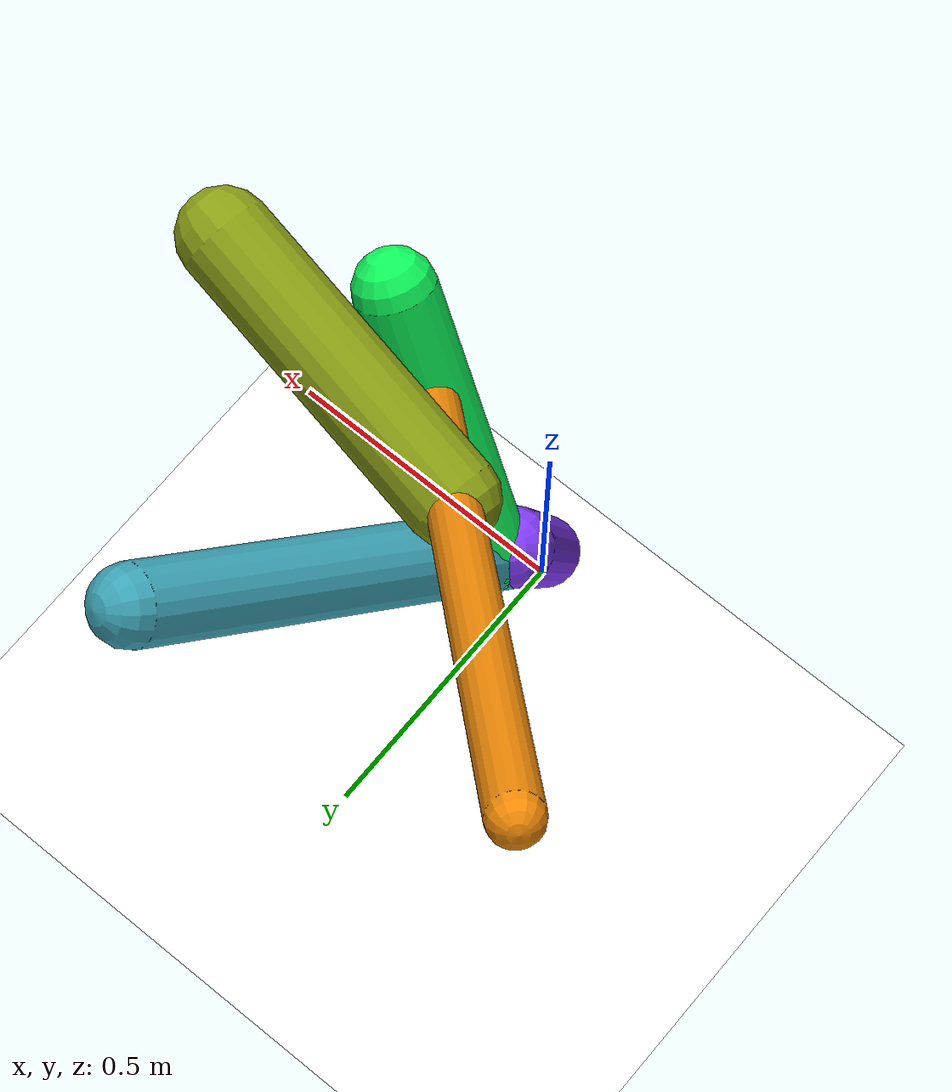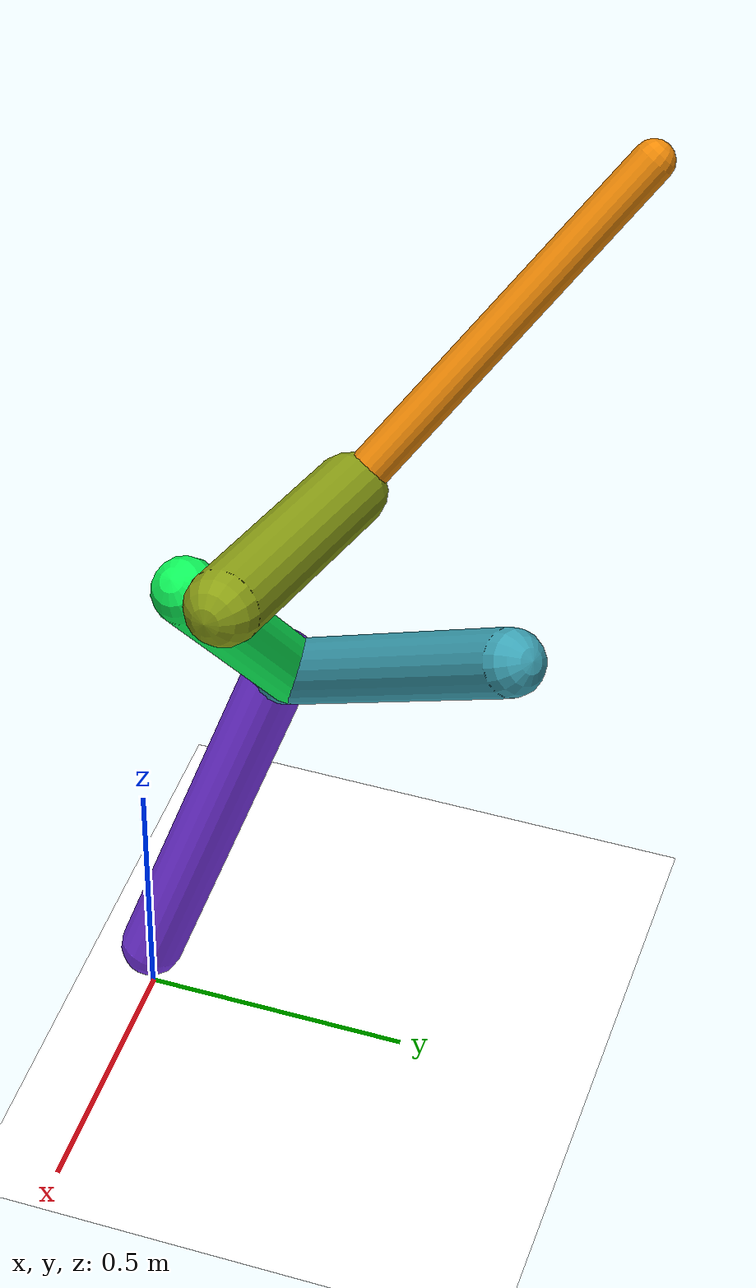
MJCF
<mujoco model="morphology">
  <option timestep="0.01"/>
  <default>
    <default class="/"/>
    <default class="0/"/>
    <default class="0/1/"/>
    <default class="0/1/2/"/>
    <default class="0/1/2/3/"/>
    <default class="0/1/2/3/4/"/>
  </default>
  <asset>
    <texture name="texplane" type="2d" builtin="checker" rgb1="0.10000000000000001 0.20000000000000001 0.29999999999999999" rgb2="0.20000000000000001 0.29999999999999999 0.40000000000000002" width="300" height="300"/>
    <material name="MatPlane" class="/" texture="texplane" texrepeat="20 20" specular="1" shininess="1" reflectance="0.5"/>
  </asset>
  <worldbody>
    <light name="//unnamed_light_0" class="/" directional="true" pos="0 0 1.5" dir="0 0 -1.3" cutoff="100" exponent="1" diffuse="1 1 1" specular="0.10000000000000001 0.10000000000000001 0.10000000000000001"/>
    <geom name="ground" class="/" type="plane" size="15 15 0.5" material="MatPlane" rgba="1 1 1 1"/>
    <site name="body" class="/" size="9.9999999999999995e-07 9.9999999999999995e-07 9.9999999999999995e-07" pos="0 0 0.10000000000000001"/>
    <body pos="0 0 0.10000000000000001" name="0/">
      <freejoint name="0/"/>
      <geom name="0/geom" class="0/" type="capsule" contype="1" conaffinity="1" condim="3" size="0.059070205948229787" rgba="0.51090367066379661 0.22830723833799016 0.97212608646440068 1" friction="0.59999999999999998 0.10000000000000001 0.10000000000000001" fromto="0 0 0 -0.11206018951559682 0.23620110630052071 0.72040203933370073"/>
      <site name="0/end0" class="0/" size="0.0050000000000000001" pos="-0.11206018951559682 0.23620110630052071 0.72040203933370073"/>
      <site name="0/attach1" class="0/" size="9.9999999999999995e-07 9.9999999999999995e-07 9.9999999999999995e-07" pos="-0.10770349177528353 0.22701803396656084 0.69239410939489421"/>
      <body pos="-0.10770349177528353 0.22701803396656084 0.69239410939489421" name="0/1/">
        <joint name="0/1/joint/" class="0/" type="hinge" axis="0 1 0" limited="true" range="-40.716969231009557 40.716969231009557"/>
        <geom name="0/1/geom" class="0/1/" type="capsule" contype="1" conaffinity="1" condim="3" size="0.058895077632900167" rgba="0.23298932180848331 0.6385157189463827 0.71026778506236476 1" friction="0.59999999999999998 0.10000000000000001 0.10000000000000001" fromto="0 0 0 0.24849582314458618 0.49730611108311806 0.39374618795719973"/>
        <site name="0/1/end1" class="0/1/" size="0.0050000000000000001" pos="0.24849582314458618 0.49730611108311806 0.39374618795719973"/>
        <site name="0/1/attach2" class="0/1/" size="9.9999999999999995e-07 9.9999999999999995e-07 9.9999999999999995e-07" pos="0.018915810682409252 0.037855558815489854 0.029972448848708085"/>
        <body pos="0.018915810682409252 0.037855558815489854 0.029972448848708085" name="0/1/2/">
          <joint name="0/1/2/joint/" class="0/1/" type="hinge" axis="-0.93109950577311562 0.28597995697138595 0.22642697401083614" limited="true" range="-45.242805720640064 45.242805720640064"/>
          <geom name="0/1/2/geom" class="0/1/2/" type="capsule" contype="1" conaffinity="1" condim="3" size="0.059605936802312805" rgba="0.050149687664105547 0.97490437123562346 0.35210924211522876 1" friction="0.59999999999999998 0.10000000000000001 0.10000000000000001" fromto="0 0 0 0.24884090850795548 -0.10016161286423353 0.37658283316195029"/>
          <site name="0/1/2/end2" class="0/1/2/" size="0.0050000000000000001" pos="0.24884090850795548 -0.10016161286423353 0.37658283316195029"/>
          <site name="0/1/2/attach3" class="0/1/2/" size="9.9999999999999995e-07 9.9999999999999995e-07 9.9999999999999995e-07" pos="0.15564431744997659 -0.062648806269102741 0.23554398021736966"/>
          <body pos="0.15564431744997659 -0.062648806269102741 0.23554398021736966" name="0/1/2/3/">
            <joint name="0/1/2/3/joint/" class="0/1/2/" type="hinge" axis="-5.5511151231257827e-17 0.96640115549685879 0.25703853145848776" limited="true" range="-34.902993035165977 34.902993035165977"/>
            <geom name="0/1/2/3/geom" class="0/1/2/3/" type="capsule" contype="1" conaffinity="1" condim="3" size="0.03699569982208184" rgba="0.92899633155097128 0.53441044061973175 0.025740930500663617 1" friction="0.59999999999999998 0.10000000000000001 0.10000000000000001" fromto="0 0 0 -0.58484392159837051 0.55202057761234102 0.68816981516177345"/>
            <site name="0/1/2/3/end3" class="0/1/2/3/" size="0.0050000000000000001" pos="-0.58484392159837051 0.55202057761234102 0.68816981516177345"/>
            <site name="0/1/2/3/attach4" class="0/1/2/3/" size="9.9999999999999995e-07 9.9999999999999995e-07 9.9999999999999995e-07" pos="-0.17074986506422643 0.16116682700981017 0.20091668689828759"/>
            <body pos="-0.17074986506422643 0.16116682700981017 0.20091668689828759" name="0/1/2/3/4/">
              <joint name="0/1/2/3/4/joint/" class="0/1/2/3/" type="hinge" axis="0 -0.78004718354929725 0.62572069762539329" limited="true" range="-45.163165155750775 45.163165155750775"/>
              <geom name="0/1/2/3/4/geom" class="0/1/2/3/4/" type="capsule" contype="1" conaffinity="1" condim="3" size="0.066008501331527497" rgba="0.54820390453067425 0.62699636568389749 0.080259804231928467 1" friction="0.59999999999999998 0.10000000000000001 0.10000000000000001" fromto="0 0 0 0.43746094908197808 -0.064786665818130529 0.092839142108050332"/>
              <site name="0/1/2/3/4/end4" class="0/1/2/3/4/" size="0.0050000000000000001" pos="0.43746094908197808 -0.064786665818130529 0.092839142108050332"/>
            </body>
          </body>
        </body>
      </body>
      <camera name="0/iso" class="0/" mode="trackcom" pos="-2.2999999999999998 -2.2999999999999998 1" xyaxes="0.45000000000000001 -0.45000000000000001 0 0.29999999999999999 0.14999999999999999 0.93999999999999995"/>
    </body>
  </worldbody>
  <actuator>
    <motor name="0/1/motor" class="0/1/" ctrllimited="true" ctrlrange="-1 1" gear="50" joint="0/1/joint/"/>
    <motor name="0/1/2/motor" class="0/1/2/" ctrllimited="true" ctrlrange="-1 1" gear="62" joint="0/1/2/joint/"/>
    <motor name="0/1/2/3/motor" class="0/1/2/3/" ctrllimited="true" ctrlrange="-1 1" gear="58" joint="0/1/2/3/joint/"/>
    <motor name="0/1/2/3/4/motor" class="0/1/2/3/4/" ctrllimited="true" ctrlrange="-1 1" gear="95" joint="0/1/2/3/4/joint/"/>
  </actuator>
  <sensor>
    <subtreelinvel name="velocity" body="0/"/>
  </sensor>
</mujoco>
